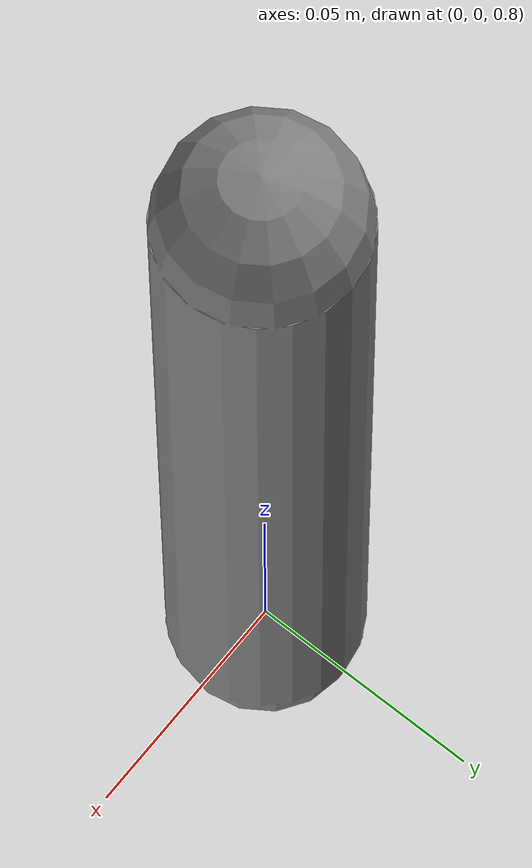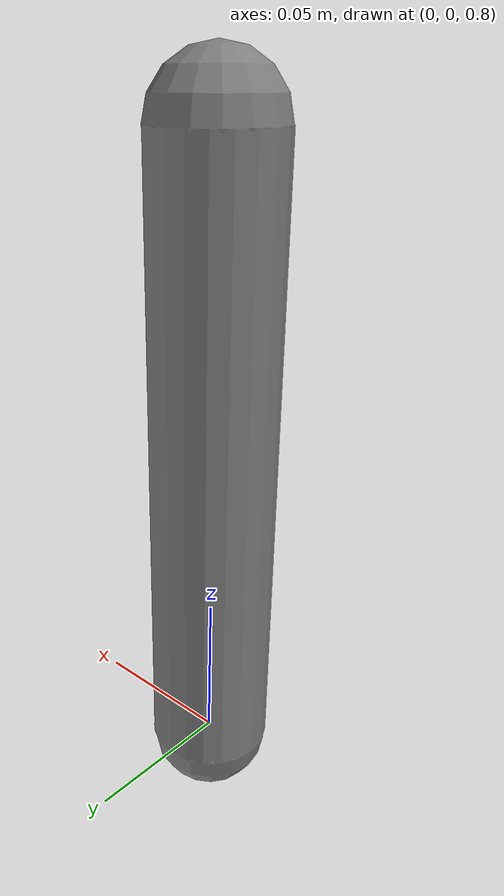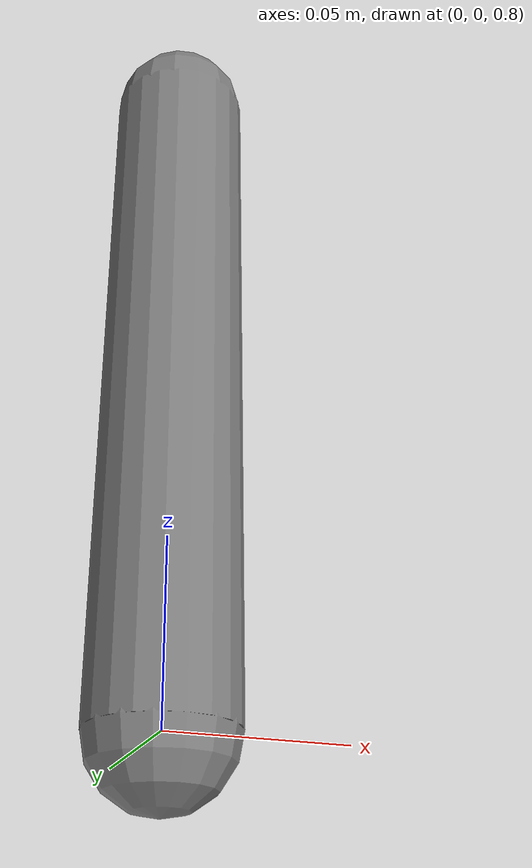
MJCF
<mujoco model="sensors_refs">
  <compiler angle="radian"/>
  <worldbody>
    <body name="pend" pos="0 0 1">
      <joint name="pj" type="hinge" axis="0 1 0"/>
      <geom name="pg" type="capsule" size="0.02" fromto="0 0 0 0 0 -0.2"/>
      <site name="imu" pos="0 0 -0.2" size="0.01"/>
    </body>
  </worldbody>
  <actuator>
    <motor name="pm" joint="pj"/>
  </actuator>
  <sensor>
    <accelerometer name="acc" site="imu"/>
    <gyro name="gyr" site="imu"/>
    <velocimeter name="vel" site="imu"/>
    <force name="frc" site="imu"/>
    <touch name="tch" site="imu"/>
    <jointpos name="jp" joint="pj"/>
    <actuatorpos name="ap" actuator="pm"/>
    <framepos name="fp" objtype="site" objname="imu"/>
    <framequat name="fq" objtype="body" objname="pend"/>
    <subtreecom name="com" body="pend"/>
  </sensor>
</mujoco>
